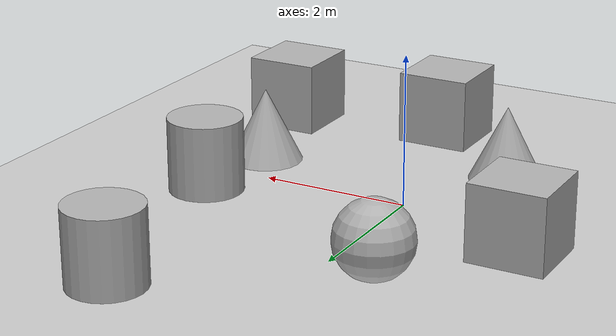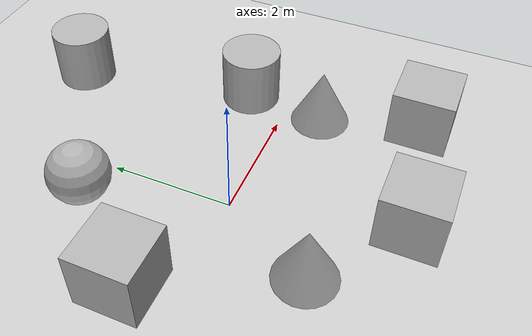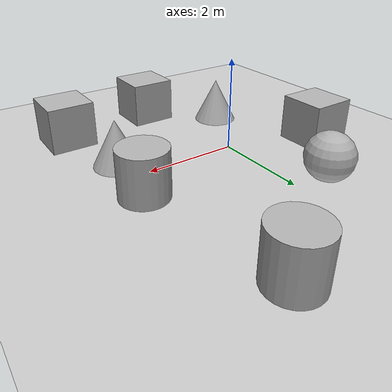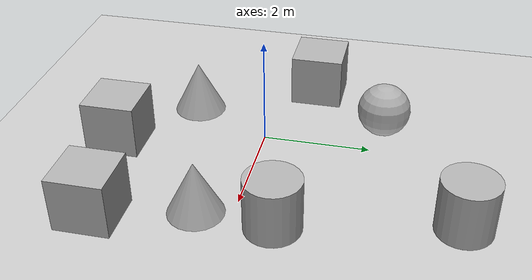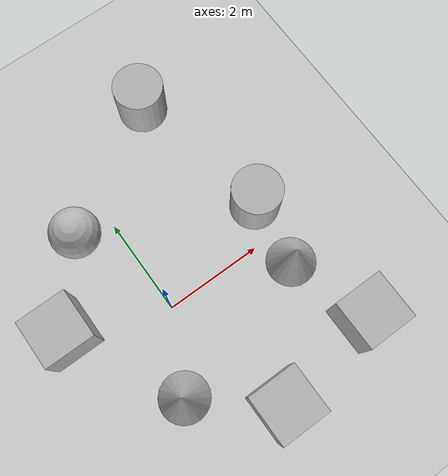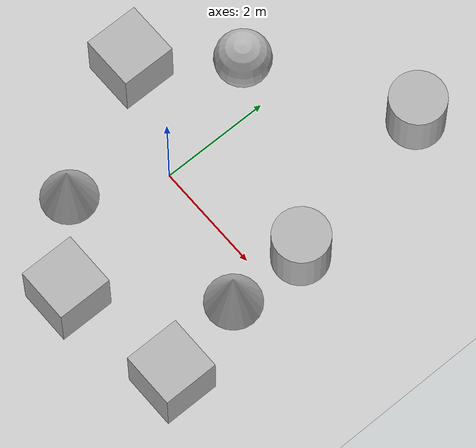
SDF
<sdf version='1.10'>
  <world name='empty'>
    <physics name='1ms' type='ignored'>
      <max_step_size>0.001</max_step_size>
      <real_time_factor>1</real_time_factor>
      <real_time_update_rate>1000</real_time_update_rate>
    </physics>
    <plugin name='gz::sim::systems::Physics' filename='gz-sim-physics-system'/>
    <plugin name='gz::sim::systems::UserCommands' filename='gz-sim-user-commands-system'/>
    <plugin name='gz::sim::systems::SceneBroadcaster' filename='gz-sim-scene-broadcaster-system'/>
    <plugin name='gz::sim::systems::Contact' filename='gz-sim-contact-system'/>
    <gravity>0 0 -9.8000000000000007</gravity>
    <magnetic_field>5.5644999999999998e-06 2.2875799999999999e-05 -4.2388400000000002e-05</magnetic_field>
    <atmosphere type='adiabatic'/>
    <scene>
      <ambient>0.400000006 0.400000006 0.400000006 1</ambient>
      <background>0.699999988 0.699999988 0.699999988 1</background>
      <shadows>true</shadows>
    </scene>
    <model name='ground_plane'>
      <static>true</static>
      <link name='link'>
        <collision name='collision'>
          <geometry>
            <plane>
              <normal>0 0 1</normal>
              <size>100 100</size>
            </plane>
          </geometry>
          <surface>
            <friction>
              <ode/>
            </friction>
            <bounce/>
            <contact/>
          </surface>
        </collision>
        <visual name='visual'>
          <geometry>
            <plane>
              <normal>0 0 1</normal>
              <size>100 100</size>
            </plane>
          </geometry>
          <material>
            <ambient>0.800000012 0.800000012 0.800000012 1</ambient>
            <diffuse>0.800000012 0.800000012 0.800000012 1</diffuse>
            <specular>0.800000012 0.800000012 0.800000012 1</specular>
          </material>
        </visual>
        <pose>0 0 0 0 0 0</pose>
        <inertial>
          <pose>0 0 0 0 0 0</pose>
          <mass>1</mass>
          <inertia>
            <ixx>1</ixx>
            <ixy>0</ixy>
            <ixz>0</ixz>
            <iyy>1</iyy>
            <iyz>0</iyz>
            <izz>1</izz>
          </inertia>
        </inertial>
        <enable_wind>false</enable_wind>
      </link>
      <pose>0 0 0 0 0 0</pose>
      <self_collide>false</self_collide>
    </model>
    <model name='box'>
      <pose>2.8481114545090582 -2.2957528295956093 0.49999999990199806 6.2287739151293738e-22 9.3279666454713669e-22 -3.6315533669320137e-22</pose>
      <link name='box_link'>
        <inertial>
          <inertia>
            <ixx>0.16666</ixx>
            <ixy>0</ixy>
            <ixz>0</ixz>
            <iyy>0.16666</iyy>
            <iyz>0</iyz>
            <izz>0.16666</izz>
          </inertia>
          <mass>1</mass>
          <pose>0 0 0 0 0 0</pose>
        </inertial>
        <collision name='box_collision'>
          <geometry>
            <box>
              <size>1 1 1</size>
            </box>
          </geometry>
          <surface>
            <friction>
              <ode/>
            </friction>
            <bounce/>
            <contact/>
          </surface>
        </collision>
        <visual name='box_visual'>
          <geometry>
            <box>
              <size>1 1 1</size>
            </box>
          </geometry>
          <material>
            <ambient>0.300000012 0.300000012 0.300000012 1</ambient>
            <diffuse>0.699999988 0.699999988 0.699999988 1</diffuse>
            <specular>1 1 1 1</specular>
          </material>
        </visual>
        <pose>0 0 0 0 0 0</pose>
        <enable_wind>false</enable_wind>
      </link>
      <static>false</static>
      <self_collide>false</self_collide>
    </model>
    <model name='cylinder'>
      <pose>2.5236162243589755 0.71456999232308371 0.49999942638036005 5.0424191826390042e-19 -2.4266156783215656e-19 -2.9565024195559689e-21</pose>
      <link name='cylinder_link'>
        <inertial>
          <inertia>
            <ixx>0.14580000000000001</ixx>
            <ixy>0</ixy>
            <ixz>0</ixz>
            <iyy>0.14580000000000001</iyy>
            <iyz>0</iyz>
            <izz>0.125</izz>
          </inertia>
          <mass>1</mass>
          <pose>0 0 0 0 0 0</pose>
        </inertial>
        <collision name='cylinder_collision'>
          <geometry>
            <cylinder>
              <radius>0.5</radius>
              <length>1</length>
            </cylinder>
          </geometry>
          <surface>
            <friction>
              <ode/>
            </friction>
            <bounce/>
            <contact/>
          </surface>
        </collision>
        <visual name='cylinder_visual'>
          <geometry>
            <cylinder>
              <radius>0.5</radius>
              <length>1</length>
            </cylinder>
          </geometry>
          <material>
            <ambient>0.300000012 0.300000012 0.300000012 1</ambient>
            <diffuse>0.699999988 0.699999988 0.699999988 1</diffuse>
            <specular>1 1 1 1</specular>
          </material>
        </visual>
        <pose>0 0 0 0 0 0</pose>
        <enable_wind>false</enable_wind>
      </link>
      <static>false</static>
      <self_collide>false</self_collide>
    </model>
    <model name='cone'>
      <pose>2.410424984790597 -0.63225362118801165 0.49999999993296756 5.2543814717421522e-17 -7.713284103989973e-10 2.5230230910124188e-23</pose>
      <link name='cone_link'>
        <inertial>
          <inertia>
            <ixx>0.074999999999999997</ixx>
            <ixy>0</ixy>
            <ixz>0</ixz>
            <iyy>0.074999999999999997</iyy>
            <iyz>0</iyz>
            <izz>0.074999999999999997</izz>
          </inertia>
          <mass>1</mass>
          <pose>0 0 0 0 0 0</pose>
        </inertial>
        <collision name='cone_collision'>
          <geometry>
            <cone>
              <radius>0.5</radius>
              <length>1</length>
            </cone>
          </geometry>
          <surface>
            <friction>
              <ode/>
            </friction>
            <bounce/>
            <contact/>
          </surface>
        </collision>
        <visual name='cone_visual'>
          <geometry>
            <cone>
              <radius>0.5</radius>
              <length>1</length>
            </cone>
          </geometry>
          <material>
            <ambient>0.300000012 0.300000012 0.300000012 1</ambient>
            <diffuse>0.699999988 0.699999988 0.699999988 1</diffuse>
            <specular>1 1 1 1</specular>
          </material>
        </visual>
        <pose>0 0 0 0 0 0</pose>
        <enable_wind>false</enable_wind>
      </link>
      <static>false</static>
      <self_collide>false</self_collide>
    </model>
    <model name='cone_0'>
      <pose>-0.77431215119480701 -1.5141111688217466 0.49999999993296756 5.2539673238603227e-17 -7.7132841034849224e-10 -2.2042306062451038e-22</pose>
      <link name='cone_link'>
        <inertial>
          <inertia>
            <ixx>0.074999999999999997</ixx>
            <ixy>0</ixy>
            <ixz>0</ixz>
            <iyy>0.074999999999999997</iyy>
            <iyz>0</iyz>
            <izz>0.074999999999999997</izz>
          </inertia>
          <mass>1</mass>
          <pose>0 0 0 0 0 0</pose>
        </inertial>
        <collision name='cone_collision'>
          <geometry>
            <cone>
              <radius>0.5</radius>
              <length>1</length>
            </cone>
          </geometry>
          <surface>
            <friction>
              <ode/>
            </friction>
            <bounce/>
            <contact/>
          </surface>
        </collision>
        <visual name='cone_visual'>
          <geometry>
            <cone>
              <radius>0.5</radius>
              <length>1</length>
            </cone>
          </geometry>
          <material>
            <ambient>0.300000012 0.300000012 0.300000012 1</ambient>
            <diffuse>0.699999988 0.699999988 0.699999988 1</diffuse>
            <specular>1 1 1 1</specular>
          </material>
        </visual>
        <pose>0 0 0 0 0 0</pose>
        <enable_wind>false</enable_wind>
      </link>
      <static>false</static>
      <self_collide>false</self_collide>
    </model>
    <model name='sphere'>
      <pose>-0.68731626358988329 2.1813536866501417 0.499999999902001 0 0 0</pose>
      <link name='sphere_link'>
        <inertial>
          <inertia>
            <ixx>0.10000000000000001</ixx>
            <ixy>0</ixy>
            <ixz>0</ixz>
            <iyy>0.10000000000000001</iyy>
            <iyz>0</iyz>
            <izz>0.10000000000000001</izz>
          </inertia>
          <mass>1</mass>
          <pose>0 0 0 0 0 0</pose>
        </inertial>
        <collision name='sphere_collision'>
          <geometry>
            <sphere>
              <radius>0.5</radius>
            </sphere>
          </geometry>
          <surface>
            <friction>
              <ode/>
            </friction>
            <bounce/>
            <contact/>
          </surface>
        </collision>
        <visual name='sphere_visual'>
          <geometry>
            <sphere>
              <radius>0.5</radius>
            </sphere>
          </geometry>
          <material>
            <ambient>0.300000012 0.300000012 0.300000012 1</ambient>
            <diffuse>0.699999988 0.699999988 0.699999988 1</diffuse>
            <specular>1 1 1 1</specular>
          </material>
        </visual>
        <pose>0 0 0 0 0 0</pose>
        <enable_wind>false</enable_wind>
      </link>
      <static>false</static>
      <self_collide>false</self_collide>
    </model>
    <model name='box_0'>
      <pose>-1.8927467167549983 0.74123434479612893 0.49999999990199806 6.2287739151293738e-22 9.3279666454713669e-22 -3.6315533669320137e-22</pose>
      <link name='box_link'>
        <inertial>
          <inertia>
            <ixx>0.16666</ixx>
            <ixy>0</ixy>
            <ixz>0</ixz>
            <iyy>0.16666</iyy>
            <iyz>0</iyz>
            <izz>0.16666</izz>
          </inertia>
          <mass>1</mass>
          <pose>0 0 0 0 0 0</pose>
        </inertial>
        <collision name='box_collision'>
          <geometry>
            <box>
              <size>1 1 1</size>
            </box>
          </geometry>
          <surface>
            <friction>
              <ode/>
            </friction>
            <bounce/>
            <contact/>
          </surface>
        </collision>
        <visual name='box_visual'>
          <geometry>
            <box>
              <size>1 1 1</size>
            </box>
          </geometry>
          <material>
            <ambient>0.300000012 0.300000012 0.300000012 1</ambient>
            <diffuse>0.699999988 0.699999988 0.699999988 1</diffuse>
            <specular>1 1 1 1</specular>
          </material>
        </visual>
        <pose>0 0 0 0 0 0</pose>
        <enable_wind>false</enable_wind>
      </link>
      <static>false</static>
      <self_collide>false</self_collide>
    </model>
    <model name='cylinder_0'>
      <pose>1.9075154420184433 3.7741616458154366 0.49999942638036005 2.8941558088748473e-19 4.684796692278412e-19 1.2659096550200923e-20</pose>
      <link name='cylinder_link'>
        <inertial>
          <inertia>
            <ixx>0.14580000000000001</ixx>
            <ixy>0</ixy>
            <ixz>0</ixz>
            <iyy>0.14580000000000001</iyy>
            <iyz>0</iyz>
            <izz>0.125</izz>
          </inertia>
          <mass>1</mass>
          <pose>0 0 0 0 0 0</pose>
        </inertial>
        <collision name='cylinder_collision'>
          <geometry>
            <cylinder>
              <radius>0.5</radius>
              <length>1</length>
            </cylinder>
          </geometry>
          <surface>
            <friction>
              <ode/>
            </friction>
            <bounce/>
            <contact/>
          </surface>
        </collision>
        <visual name='cylinder_visual'>
          <geometry>
            <cylinder>
              <radius>0.5</radius>
              <length>1</length>
            </cylinder>
          </geometry>
          <material>
            <ambient>0.300000012 0.300000012 0.300000012 1</ambient>
            <diffuse>0.699999988 0.699999988 0.699999988 1</diffuse>
            <specular>1 1 1 1</specular>
          </material>
        </visual>
        <pose>0 0 0 0 0 0</pose>
        <enable_wind>false</enable_wind>
      </link>
      <static>false</static>
      <self_collide>false</self_collide>
    </model>
    <model name='box_1'>
      <pose>0.63321989594694017 -2.6719434456516411 0.49999999990199806 6.2287739151293738e-22 9.3279666454713669e-22 -3.6315533669320137e-22</pose>
      <link name='box_link'>
        <inertial>
          <inertia>
            <ixx>0.16666</ixx>
            <ixy>0</ixy>
            <ixz>0</ixz>
            <iyy>0.16666</iyy>
            <iyz>0</iyz>
            <izz>0.16666</izz>
          </inertia>
          <mass>1</mass>
          <pose>0 0 0 0 0 0</pose>
        </inertial>
        <collision name='box_collision'>
          <geometry>
            <box>
              <size>1 1 1</size>
            </box>
          </geometry>
          <surface>
            <friction>
              <ode/>
            </friction>
            <bounce/>
            <contact/>
          </surface>
        </collision>
        <visual name='box_visual'>
          <geometry>
            <box>
              <size>1 1 1</size>
            </box>
          </geometry>
          <material>
            <ambient>0.300000012 0.300000012 0.300000012 1</ambient>
            <diffuse>0.699999988 0.699999988 0.699999988 1</diffuse>
            <specular>1 1 1 1</specular>
          </material>
        </visual>
        <pose>0 0 0 0 0 0</pose>
        <enable_wind>false</enable_wind>
      </link>
      <static>false</static>
      <self_collide>false</self_collide>
    </model>
    <light name='sun' type='directional'>
      <pose>0 0 10 0 0 0</pose>
      <cast_shadows>true</cast_shadows>
      <intensity>1</intensity>
      <direction>-0.5 0.10000000000000001 -0.90000000000000002</direction>
      <diffuse>0.800000012 0.800000012 0.800000012 1</diffuse>
      <specular>0.200000003 0.200000003 0.200000003 1</specular>
      <attenuation>
        <range>1000</range>
        <linear>0.01</linear>
        <constant>0.90000000000000002</constant>
        <quadratic>0.001</quadratic>
      </attenuation>
      <spot>
        <inner_angle>0</inner_angle>
        <outer_angle>0</outer_angle>
        <falloff>0</falloff>
      </spot>
    </light>
  </world>
</sdf>
